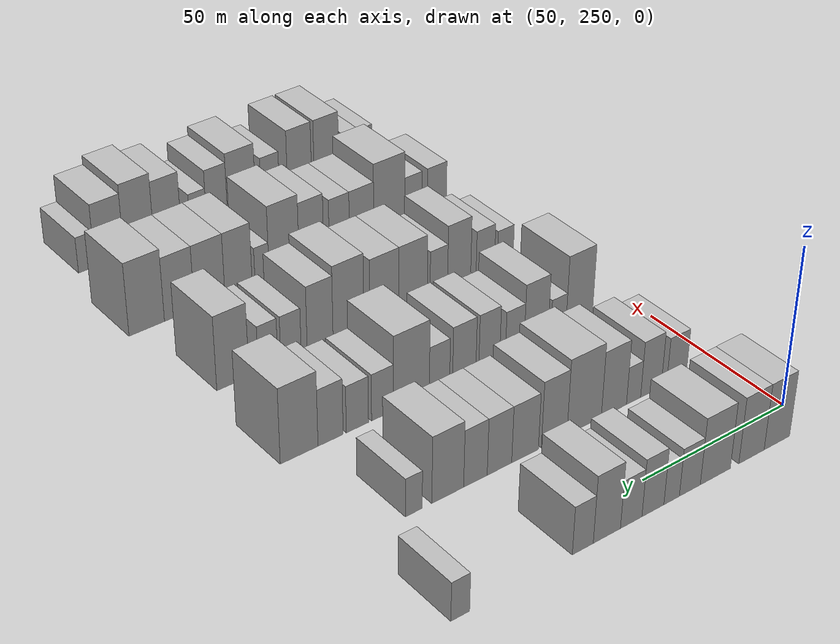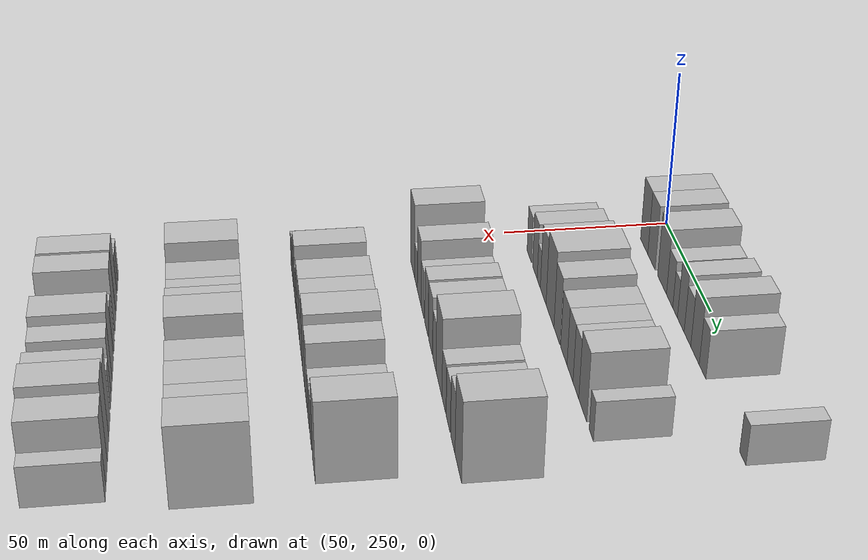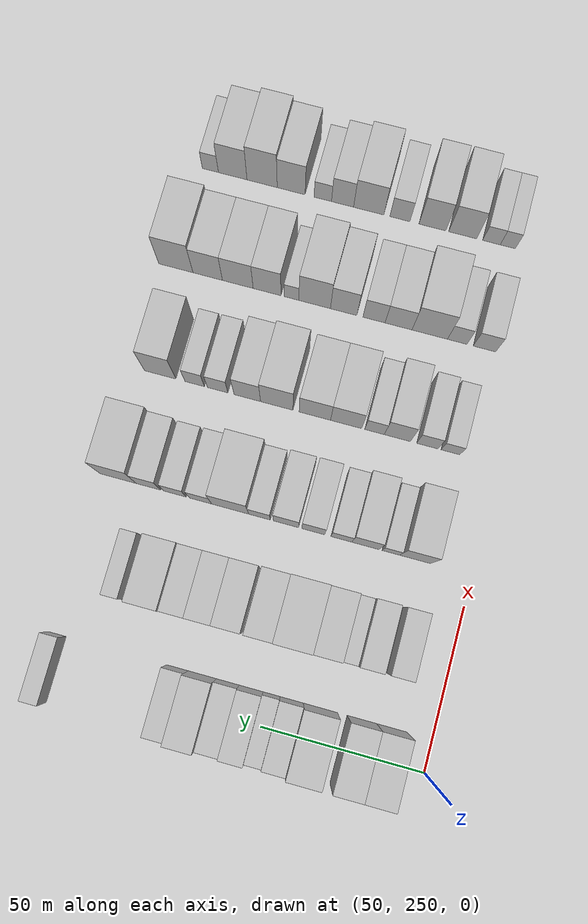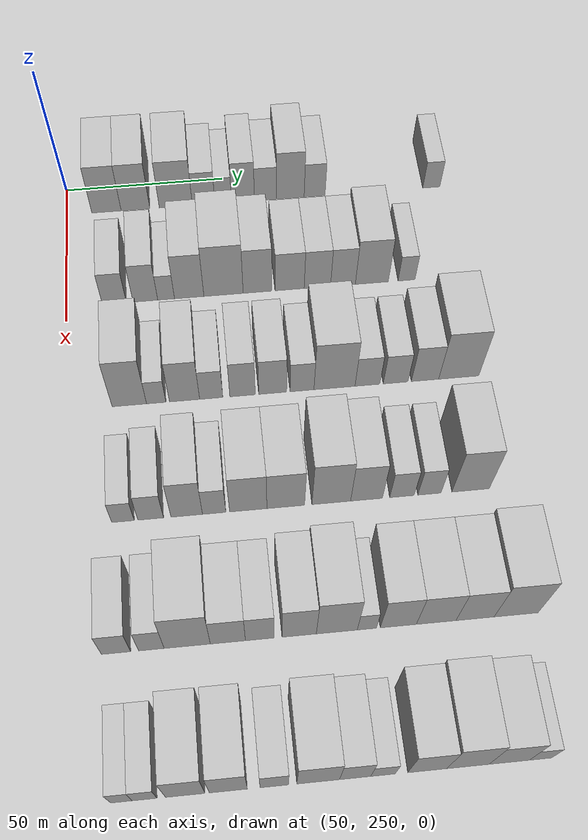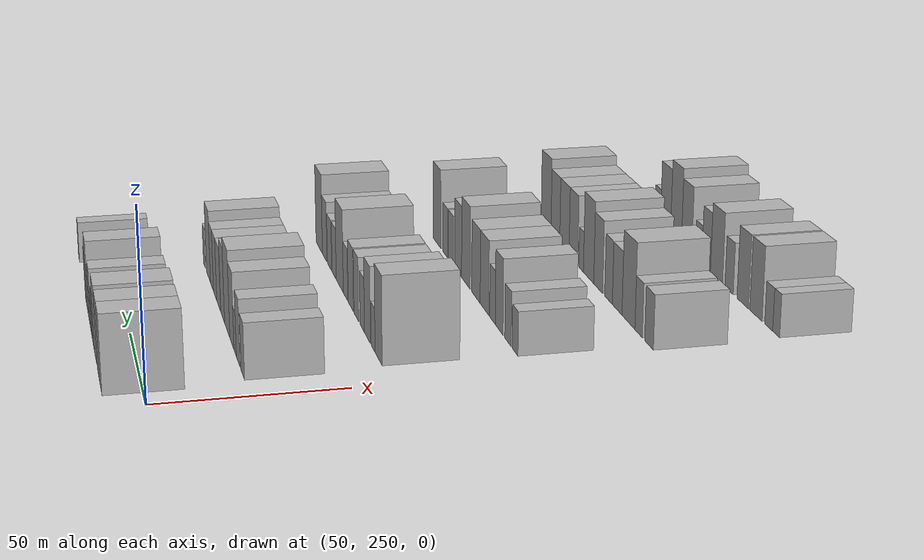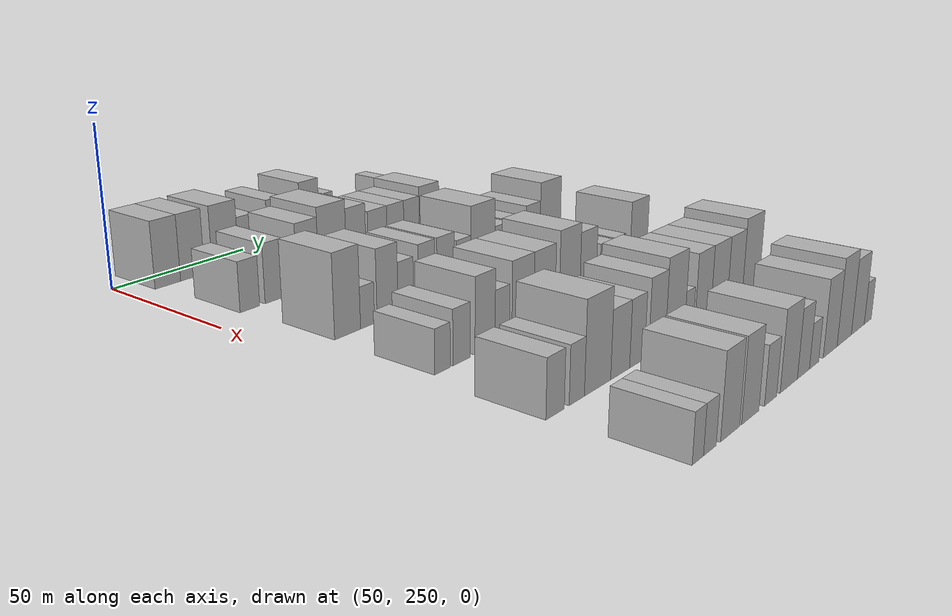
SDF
<sdf version="1.6">
 <world name="default">
  <model name="building_86">
   <static>1</static>
   <pose>50.0000 262.5897 0 0.000000 0.000000 0.000000</pose>
   <link name="link">
    <pose>0 0 10.50 0 0 0</pose>
    <collision name="collision"><geometry><box><size>20.0000 9.2409 21.0000</size></box></geometry></collision>
    <visual name="visual">
     <cast_shadows>0</cast_shadows>
     <geometry><box><size>20.0000 9.2409 21.0000</size></box></geometry>
     <material>
      <script>
       <uri>model://HANNAS_wall/materials/scripts</uri>
       <uri>model://HANNAS_wall/materials/textures</uri>
       <name>vrc/HANNAS_wall</name>
      </script>
     </material>
    </visual>
   </link>
  </model>
  <model name="building_87">
   <static>1</static>
   <pose>50.0000 271.7414 0 0.000000 0.000000 0.000000</pose>
   <link name="link">
    <pose>0 0 10.50 0 0 0</pose>
    <collision name="collision"><geometry><box><size>20.0000 9.0625 21.0000</size></box></geometry></collision>
    <visual name="visual">
     <cast_shadows>0</cast_shadows>
     <geometry><box><size>20.0000 9.0625 21.0000</size></box></geometry>
     <material>
      <script>
       <uri>model://HANNAS_wall/materials/scripts</uri>
       <uri>model://HANNAS_wall/materials/textures</uri>
       <name>vrc/HANNAS_wall</name>
      </script>
     </material>
    </visual>
   </link>
  </model>
  <model name="building_88">
   <static>1</static>
   <pose>50.0000 284.5106 0 0.000000 0.000000 0.000000</pose>
   <link name="link">
    <pose>0 0 10.50 0 0 0</pose>
    <collision name="collision"><geometry><box><size>20.0000 10.4759 21.0000</size></box></geometry></collision>
    <visual name="visual">
     <cast_shadows>0</cast_shadows>
     <geometry><box><size>20.0000 10.4759 21.0000</size></box></geometry>
     <material>
      <script>
       <uri>model://HANNAS_wall/materials/scripts</uri>
       <uri>model://HANNAS_wall/materials/textures</uri>
       <name>vrc/HANNAS_wall</name>
      </script>
     </material>
    </visual>
   </link>
  </model>
  <model name="building_89">
   <static>1</static>
   <pose>50.0000 293.3329 0 0.000000 0.000000 0.000000</pose>
   <link name="link">
    <pose>0 0 7.50 0 0 0</pose>
    <collision name="collision"><geometry><box><size>20.0000 7.1687 15.0000</size></box></geometry></collision>
    <visual name="visual">
     <cast_shadows>0</cast_shadows>
     <geometry><box><size>20.0000 7.1687 15.0000</size></box></geometry>
     <material>
      <script>
       <uri>model://HANNAS_wall/materials/scripts</uri>
       <uri>model://HANNAS_wall/materials/textures</uri>
       <name>vrc/HANNAS_wall</name>
      </script>
     </material>
    </visual>
   </link>
  </model>
  <model name="building_90">
   <static>1</static>
   <pose>50.0000 299.5452 0 0.000000 0.000000 0.000000</pose>
   <link name="link">
    <pose>0 0 6.00 0 0 0</pose>
    <collision name="collision"><geometry><box><size>20.0000 5.2559 12.0000</size></box></geometry></collision>
    <visual name="visual">
     <cast_shadows>0</cast_shadows>
     <geometry><box><size>20.0000 5.2559 12.0000</size></box></geometry>
     <material>
      <script>
       <uri>model://HANNAS_wall/materials/scripts</uri>
       <uri>model://HANNAS_wall/materials/textures</uri>
       <name>vrc/HANNAS_wall</name>
      </script>
     </material>
    </visual>
   </link>
  </model>
  <model name="building_91">
   <static>1</static>
   <pose>50.0000 305.8410 0 0.000000 0.000000 0.000000</pose>
   <link name="link">
    <pose>0 0 9.00 0 0 0</pose>
    <collision name="collision"><geometry><box><size>20.0000 7.3357 18.0000</size></box></geometry></collision>
    <visual name="visual">
     <cast_shadows>0</cast_shadows>
     <geometry><box><size>20.0000 7.3357 18.0000</size></box></geometry>
     <material>
      <script>
       <uri>model://HANNAS_wall/materials/scripts</uri>
       <uri>model://HANNAS_wall/materials/textures</uri>
       <name>vrc/HANNAS_wall</name>
      </script>
     </material>
    </visual>
   </link>
  </model>
  <model name="building_92">
   <static>1</static>
   <pose>50.0000 313.0555 0 0.000000 0.000000 0.000000</pose>
   <link name="link">
    <pose>0 0 7.50 0 0 0</pose>
    <collision name="collision"><geometry><box><size>20.0000 7.0933 15.0000</size></box></geometry></collision>
    <visual name="visual">
     <cast_shadows>0</cast_shadows>
     <geometry><box><size>20.0000 7.0933 15.0000</size></box></geometry>
     <material>
      <script>
       <uri>model://HANNAS_wall/materials/scripts</uri>
       <uri>model://HANNAS_wall/materials/textures</uri>
       <name>vrc/HANNAS_wall</name>
      </script>
     </material>
    </visual>
   </link>
  </model>
  <model name="building_93">
   <static>1</static>
   <pose>50.0000 321.0074 0 0.000000 0.000000 0.000000</pose>
   <link name="link">
    <pose>0 0 10.50 0 0 0</pose>
    <collision name="collision"><geometry><box><size>20.0000 8.8105 21.0000</size></box></geometry></collision>
    <visual name="visual">
     <cast_shadows>0</cast_shadows>
     <geometry><box><size>20.0000 8.8105 21.0000</size></box></geometry>
     <material>
      <script>
       <uri>model://HANNAS_wall/materials/scripts</uri>
       <uri>model://HANNAS_wall/materials/textures</uri>
       <name>vrc/HANNAS_wall</name>
      </script>
     </material>
    </visual>
   </link>
  </model>
  <model name="building_94">
   <static>1</static>
   <pose>50.0000 328.7657 0 0.000000 0.000000 0.000000</pose>
   <link name="link">
    <pose>0 0 7.50 0 0 0</pose>
    <collision name="collision"><geometry><box><size>20.0000 6.7059 15.0000</size></box></geometry></collision>
    <visual name="visual">
     <cast_shadows>0</cast_shadows>
     <geometry><box><size>20.0000 6.7059 15.0000</size></box></geometry>
     <material>
      <script>
       <uri>model://HANNAS_wall/materials/scripts</uri>
       <uri>model://HANNAS_wall/materials/textures</uri>
       <name>vrc/HANNAS_wall</name>
      </script>
     </material>
    </visual>
   </link>
  </model>
  <model name="building_95">
   <static>1</static>
   <pose>50.0000 366.4591 0 0.000000 0.000000 0.000000</pose>
   <link name="link">
    <pose>0 0 6.00 0 0 0</pose>
    <collision name="collision"><geometry><box><size>20.0000 5.5603 12.0000</size></box></geometry></collision>
    <visual name="visual">
     <cast_shadows>0</cast_shadows>
     <geometry><box><size>20.0000 5.5603 12.0000</size></box></geometry>
     <material>
      <script>
       <uri>model://HANNAS_wall/materials/scripts</uri>
       <uri>model://HANNAS_wall/materials/textures</uri>
       <name>vrc/HANNAS_wall</name>
      </script>
     </material>
    </visual>
   </link>
  </model>
  <model name="building_210">
   <static>1</static>
   <pose>85.0000 264.3856 0 0.000000 0.000000 0.000000</pose>
   <link name="link">
    <pose>0 0 7.50 0 0 0</pose>
    <collision name="collision"><geometry><box><size>20.0000 7.1688 15.0000</size></box></geometry></collision>
    <visual name="visual">
     <cast_shadows>0</cast_shadows>
     <geometry><box><size>20.0000 7.1688 15.0000</size></box></geometry>
     <material>
      <script>
       <uri>model://HANNAS_wall/materials/scripts</uri>
       <uri>model://HANNAS_wall/materials/textures</uri>
       <name>vrc/HANNAS_wall</name>
      </script>
     </material>
    </visual>
   </link>
  </model>
  <model name="building_211">
   <static>1</static>
   <pose>85.0000 273.6689 0 0.000000 0.000000 0.000000</pose>
   <link name="link">
    <pose>0 0 9.00 0 0 0</pose>
    <collision name="collision"><geometry><box><size>20.0000 7.3978 18.0000</size></box></geometry></collision>
    <visual name="visual">
     <cast_shadows>0</cast_shadows>
     <geometry><box><size>20.0000 7.3978 18.0000</size></box></geometry>
     <material>
      <script>
       <uri>model://HANNAS_wall/materials/scripts</uri>
       <uri>model://HANNAS_wall/materials/textures</uri>
       <name>vrc/HANNAS_wall</name>
      </script>
     </material>
    </visual>
   </link>
  </model>
  <model name="building_212">
   <static>1</static>
   <pose>85.0000 279.8875 0 0.000000 0.000000 0.000000</pose>
   <link name="link">
    <pose>0 0 6.00 0 0 0</pose>
    <collision name="collision"><geometry><box><size>20.0000 5.0394 12.0000</size></box></geometry></collision>
    <visual name="visual">
     <cast_shadows>0</cast_shadows>
     <geometry><box><size>20.0000 5.0394 12.0000</size></box></geometry>
     <material>
      <script>
       <uri>model://HANNAS_wall/materials/scripts</uri>
       <uri>model://HANNAS_wall/materials/textures</uri>
       <name>vrc/HANNAS_wall</name>
      </script>
     </material>
    </visual>
   </link>
  </model>
  <model name="building_213">
   <static>1</static>
   <pose>85.0000 286.8312 0 0.000000 0.000000 0.000000</pose>
   <link name="link">
    <pose>0 0 10.50 0 0 0</pose>
    <collision name="collision"><geometry><box><size>20.0000 8.8480 21.0000</size></box></geometry></collision>
    <visual name="visual">
     <cast_shadows>0</cast_shadows>
     <geometry><box><size>20.0000 8.8480 21.0000</size></box></geometry>
     <material>
      <script>
       <uri>model://HANNAS_wall/materials/scripts</uri>
       <uri>model://HANNAS_wall/materials/textures</uri>
       <name>vrc/HANNAS_wall</name>
      </script>
     </material>
    </visual>
   </link>
  </model>
  <model name="building_214">
   <static>1</static>
   <pose>85.0000 297.1710 0 0.000000 0.000000 0.000000</pose>
   <link name="link">
    <pose>0 0 12.00 0 0 0</pose>
    <collision name="collision"><geometry><box><size>20.0000 11.8317 24.0000</size></box></geometry></collision>
    <visual name="visual">
     <cast_shadows>0</cast_shadows>
     <geometry><box><size>20.0000 11.8317 24.0000</size></box></geometry>
     <material>
      <script>
       <uri>model://HANNAS_wall/materials/scripts</uri>
       <uri>model://HANNAS_wall/materials/textures</uri>
       <name>vrc/HANNAS_wall</name>
      </script>
     </material>
    </visual>
   </link>
  </model>
  <model name="building_215">
   <static>1</static>
   <pose>85.0000 307.4220 0 0.000000 0.000000 0.000000</pose>
   <link name="link">
    <pose>0 0 10.50 0 0 0</pose>
    <collision name="collision"><geometry><box><size>20.0000 8.6702 21.0000</size></box></geometry></collision>
    <visual name="visual">
     <cast_shadows>0</cast_shadows>
     <geometry><box><size>20.0000 8.6702 21.0000</size></box></geometry>
     <material>
      <script>
       <uri>model://HANNAS_wall/materials/scripts</uri>
       <uri>model://HANNAS_wall/materials/textures</uri>
       <name>vrc/HANNAS_wall</name>
      </script>
     </material>
    </visual>
   </link>
  </model>
  <model name="building_216">
   <static>1</static>
   <pose>85.0000 317.1791 0 0.000000 0.000000 0.000000</pose>
   <link name="link">
    <pose>0 0 9.00 0 0 0</pose>
    <collision name="collision"><geometry><box><size>20.0000 8.8438 18.0000</size></box></geometry></collision>
    <visual name="visual">
     <cast_shadows>0</cast_shadows>
     <geometry><box><size>20.0000 8.8438 18.0000</size></box></geometry>
     <material>
      <script>
       <uri>model://HANNAS_wall/materials/scripts</uri>
       <uri>model://HANNAS_wall/materials/textures</uri>
       <name>vrc/HANNAS_wall</name>
      </script>
     </material>
    </visual>
   </link>
  </model>
  <model name="building_217">
   <static>1</static>
   <pose>85.0000 325.6056 0 0.000000 0.000000 0.000000</pose>
   <link name="link">
    <pose>0 0 9.00 0 0 0</pose>
    <collision name="collision"><geometry><box><size>20.0000 8.0092 18.0000</size></box></geometry></collision>
    <visual name="visual">
     <cast_shadows>0</cast_shadows>
     <geometry><box><size>20.0000 8.0092 18.0000</size></box></geometry>
     <material>
      <script>
       <uri>model://HANNAS_wall/materials/scripts</uri>
       <uri>model://HANNAS_wall/materials/textures</uri>
       <name>vrc/HANNAS_wall</name>
      </script>
     </material>
    </visual>
   </link>
  </model>
  <model name="building_218">
   <static>1</static>
   <pose>85.0000 333.3983 0 0.000000 0.000000 0.000000</pose>
   <link name="link">
    <pose>0 0 9.00 0 0 0</pose>
    <collision name="collision"><geometry><box><size>20.0000 7.5762 18.0000</size></box></geometry></collision>
    <visual name="visual">
     <cast_shadows>0</cast_shadows>
     <geometry><box><size>20.0000 7.5762 18.0000</size></box></geometry>
     <material>
      <script>
       <uri>model://HANNAS_wall/materials/scripts</uri>
       <uri>model://HANNAS_wall/materials/textures</uri>
       <name>vrc/HANNAS_wall</name>
      </script>
     </material>
    </visual>
   </link>
  </model>
  <model name="building_219">
   <static>1</static>
   <pose>85.0000 342.2260 0 0.000000 0.000000 0.000000</pose>
   <link name="link">
    <pose>0 0 10.50 0 0 0</pose>
    <collision name="collision"><geometry><box><size>20.0000 10.0791 21.0000</size></box></geometry></collision>
    <visual name="visual">
     <cast_shadows>0</cast_shadows>
     <geometry><box><size>20.0000 10.0791 21.0000</size></box></geometry>
     <material>
      <script>
       <uri>model://HANNAS_wall/materials/scripts</uri>
       <uri>model://HANNAS_wall/materials/textures</uri>
       <name>vrc/HANNAS_wall</name>
      </script>
     </material>
    </visual>
   </link>
  </model>
  <model name="building_220">
   <static>1</static>
   <pose>85.0000 352.8619 0 0.000000 0.000000 0.000000</pose>
   <link name="link">
    <pose>0 0 6.00 0 0 0</pose>
    <collision name="collision"><geometry><box><size>20.0000 5.1927 12.0000</size></box></geometry></collision>
    <visual name="visual">
     <cast_shadows>0</cast_shadows>
     <geometry><box><size>20.0000 5.1927 12.0000</size></box></geometry>
     <material>
      <script>
       <uri>model://HANNAS_wall/materials/scripts</uri>
       <uri>model://HANNAS_wall/materials/textures</uri>
       <name>vrc/HANNAS_wall</name>
      </script>
     </material>
    </visual>
   </link>
  </model>
  <model name="building_331">
   <static>1</static>
   <pose>120.0000 267.9369 0 0.000000 0.000000 0.000000</pose>
   <link name="link">
    <pose>0 0 12.00 0 0 0</pose>
    <collision name="collision"><geometry><box><size>20.0000 9.7380 24.0000</size></box></geometry></collision>
    <visual name="visual">
     <cast_shadows>0</cast_shadows>
     <geometry><box><size>20.0000 9.7380 24.0000</size></box></geometry>
     <material>
      <script>
       <uri>model://HANNAS_wall/materials/scripts</uri>
       <uri>model://HANNAS_wall/materials/textures</uri>
       <name>vrc/HANNAS_wall</name>
      </script>
     </material>
    </visual>
   </link>
  </model>
  <model name="building_332">
   <static>1</static>
   <pose>120.0000 275.5566 0 0.000000 0.000000 0.000000</pose>
   <link name="link">
    <pose>0 0 6.00 0 0 0</pose>
    <collision name="collision"><geometry><box><size>20.0000 5.5013 12.0000</size></box></geometry></collision>
    <visual name="visual">
     <cast_shadows>0</cast_shadows>
     <geometry><box><size>20.0000 5.5013 12.0000</size></box></geometry>
     <material>
      <script>
       <uri>model://HANNAS_wall/materials/scripts</uri>
       <uri>model://HANNAS_wall/materials/textures</uri>
       <name>vrc/HANNAS_wall</name>
      </script>
     </material>
    </visual>
   </link>
  </model>
  <model name="building_333">
   <static>1</static>
   <pose>120.0000 283.5938 0 0.000000 0.000000 0.000000</pose>
   <link name="link">
    <pose>0 0 10.50 0 0 0</pose>
    <collision name="collision"><geometry><box><size>20.0000 8.5732 21.0000</size></box></geometry></collision>
    <visual name="visual">
     <cast_shadows>0</cast_shadows>
     <geometry><box><size>20.0000 8.5732 21.0000</size></box></geometry>
     <material>
      <script>
       <uri>model://HANNAS_wall/materials/scripts</uri>
       <uri>model://HANNAS_wall/materials/textures</uri>
       <name>vrc/HANNAS_wall</name>
      </script>
     </material>
    </visual>
   </link>
  </model>
  <model name="building_334">
   <static>1</static>
   <pose>120.0000 291.1800 0 0.000000 0.000000 0.000000</pose>
   <link name="link">
    <pose>0 0 7.50 0 0 0</pose>
    <collision name="collision"><geometry><box><size>20.0000 6.5993 15.0000</size></box></geometry></collision>
    <visual name="visual">
     <cast_shadows>0</cast_shadows>
     <geometry><box><size>20.0000 6.5993 15.0000</size></box></geometry>
     <material>
      <script>
       <uri>model://HANNAS_wall/materials/scripts</uri>
       <uri>model://HANNAS_wall/materials/textures</uri>
       <name>vrc/HANNAS_wall</name>
      </script>
     </material>
    </visual>
   </link>
  </model>
  <model name="building_335">
   <static>1</static>
   <pose>120.0000 300.1126 0 0.000000 0.000000 0.000000</pose>
   <link name="link">
    <pose>0 0 9.00 0 0 0</pose>
    <collision name="collision"><geometry><box><size>20.0000 7.2658 18.0000</size></box></geometry></collision>
    <visual name="visual">
     <cast_shadows>0</cast_shadows>
     <geometry><box><size>20.0000 7.2658 18.0000</size></box></geometry>
     <material>
      <script>
       <uri>model://HANNAS_wall/materials/scripts</uri>
       <uri>model://HANNAS_wall/materials/textures</uri>
       <name>vrc/HANNAS_wall</name>
      </script>
     </material>
    </visual>
   </link>
  </model>
  <model name="building_336">
   <static>1</static>
   <pose>120.0000 308.7282 0 0.000000 0.000000 0.000000</pose>
   <link name="link">
    <pose>0 0 9.00 0 0 0</pose>
    <collision name="collision"><geometry><box><size>20.0000 7.9654 18.0000</size></box></geometry></collision>
    <visual name="visual">
     <cast_shadows>0</cast_shadows>
     <geometry><box><size>20.0000 7.9654 18.0000</size></box></geometry>
     <material>
      <script>
       <uri>model://HANNAS_wall/materials/scripts</uri>
       <uri>model://HANNAS_wall/materials/textures</uri>
       <name>vrc/HANNAS_wall</name>
      </script>
     </material>
    </visual>
   </link>
  </model>
  <model name="building_337">
   <static>1</static>
   <pose>120.0000 317.1400 0 0.000000 0.000000 0.000000</pose>
   <link name="link">
    <pose>0 0 7.50 0 0 0</pose>
    <collision name="collision"><geometry><box><size>20.0000 6.8581 15.0000</size></box></geometry></collision>
    <visual name="visual">
     <cast_shadows>0</cast_shadows>
     <geometry><box><size>20.0000 6.8581 15.0000</size></box></geometry>
     <material>
      <script>
       <uri>model://HANNAS_wall/materials/scripts</uri>
       <uri>model://HANNAS_wall/materials/textures</uri>
       <name>vrc/HANNAS_wall</name>
      </script>
     </material>
    </visual>
   </link>
  </model>
  <model name="building_338">
   <static>1</static>
   <pose>120.0000 326.4887 0 0.000000 0.000000 0.000000</pose>
   <link name="link">
    <pose>0 0 12.00 0 0 0</pose>
    <collision name="collision"><geometry><box><size>20.0000 11.8393 24.0000</size></box></geometry></collision>
    <visual name="visual">
     <cast_shadows>0</cast_shadows>
     <geometry><box><size>20.0000 11.8393 24.0000</size></box></geometry>
     <material>
      <script>
       <uri>model://HANNAS_wall/materials/scripts</uri>
       <uri>model://HANNAS_wall/materials/textures</uri>
       <name>vrc/HANNAS_wall</name>
      </script>
     </material>
    </visual>
   </link>
  </model>
  <model name="building_339">
   <static>1</static>
   <pose>120.0000 335.9864 0 0.000000 0.000000 0.000000</pose>
   <link name="link">
    <pose>0 0 7.50 0 0 0</pose>
    <collision name="collision"><geometry><box><size>20.0000 7.1561 15.0000</size></box></geometry></collision>
    <visual name="visual">
     <cast_shadows>0</cast_shadows>
     <geometry><box><size>20.0000 7.1561 15.0000</size></box></geometry>
     <material>
      <script>
       <uri>model://HANNAS_wall/materials/scripts</uri>
       <uri>model://HANNAS_wall/materials/textures</uri>
       <name>vrc/HANNAS_wall</name>
      </script>
     </material>
    </visual>
   </link>
  </model>
  <model name="building_340">
   <static>1</static>
   <pose>120.0000 344.1372 0 0.000000 0.000000 0.000000</pose>
   <link name="link">
    <pose>0 0 7.50 0 0 0</pose>
    <collision name="collision"><geometry><box><size>20.0000 7.1454 15.0000</size></box></geometry></collision>
    <visual name="visual">
     <cast_shadows>0</cast_shadows>
     <geometry><box><size>20.0000 7.1454 15.0000</size></box></geometry>
     <material>
      <script>
       <uri>model://HANNAS_wall/materials/scripts</uri>
       <uri>model://HANNAS_wall/materials/textures</uri>
       <name>vrc/HANNAS_wall</name>
      </script>
     </material>
    </visual>
   </link>
  </model>
  <model name="building_341">
   <static>1</static>
   <pose>120.0000 352.6727 0 0.000000 0.000000 0.000000</pose>
   <link name="link">
    <pose>0 0 9.00 0 0 0</pose>
    <collision name="collision"><geometry><box><size>20.0000 7.9255 18.0000</size></box></geometry></collision>
    <visual name="visual">
     <cast_shadows>0</cast_shadows>
     <geometry><box><size>20.0000 7.9255 18.0000</size></box></geometry>
     <material>
      <script>
       <uri>model://HANNAS_wall/materials/scripts</uri>
       <uri>model://HANNAS_wall/materials/textures</uri>
       <name>vrc/HANNAS_wall</name>
      </script>
     </material>
    </visual>
   </link>
  </model>
  <model name="building_342">
   <static>1</static>
   <pose>120.0000 362.4865 0 0.000000 0.000000 0.000000</pose>
   <link name="link">
    <pose>0 0 12.00 0 0 0</pose>
    <collision name="collision"><geometry><box><size>20.0000 11.7022 24.0000</size></box></geometry></collision>
    <visual name="visual">
     <cast_shadows>0</cast_shadows>
     <geometry><box><size>20.0000 11.7022 24.0000</size></box></geometry>
     <material>
      <script>
       <uri>model://HANNAS_wall/materials/scripts</uri>
       <uri>model://HANNAS_wall/materials/textures</uri>
       <name>vrc/HANNAS_wall</name>
      </script>
     </material>
    </visual>
   </link>
  </model>
  <model name="building_454">
   <static>1</static>
   <pose>155.0000 265.3099 0 0.000000 0.000000 0.000000</pose>
   <link name="link">
    <pose>0 0 6.00 0 0 0</pose>
    <collision name="collision"><geometry><box><size>20.0000 5.9802 12.0000</size></box></geometry></collision>
    <visual name="visual">
     <cast_shadows>0</cast_shadows>
     <geometry><box><size>20.0000 5.9802 12.0000</size></box></geometry>
     <material>
      <script>
       <uri>model://HANNAS_wall/materials/scripts</uri>
       <uri>model://HANNAS_wall/materials/textures</uri>
       <name>vrc/HANNAS_wall</name>
      </script>
     </material>
    </visual>
   </link>
  </model>
  <model name="building_455">
   <static>1</static>
   <pose>155.0000 272.7102 0 0.000000 0.000000 0.000000</pose>
   <link name="link">
    <pose>0 0 7.50 0 0 0</pose>
    <collision name="collision"><geometry><box><size>20.0000 6.8204 15.0000</size></box></geometry></collision>
    <visual name="visual">
     <cast_shadows>0</cast_shadows>
     <geometry><box><size>20.0000 6.8204 15.0000</size></box></geometry>
     <material>
      <script>
       <uri>model://HANNAS_wall/materials/scripts</uri>
       <uri>model://HANNAS_wall/materials/textures</uri>
       <name>vrc/HANNAS_wall</name>
      </script>
     </material>
    </visual>
   </link>
  </model>
  <model name="building_456">
   <static>1</static>
   <pose>155.0000 282.3299 0 0.000000 0.000000 0.000000</pose>
   <link name="link">
    <pose>0 0 10.50 0 0 0</pose>
    <collision name="collision"><geometry><box><size>20.0000 8.4191 21.0000</size></box></geometry></collision>
    <visual name="visual">
     <cast_shadows>0</cast_shadows>
     <geometry><box><size>20.0000 8.4191 21.0000</size></box></geometry>
     <material>
      <script>
       <uri>model://HANNAS_wall/materials/scripts</uri>
       <uri>model://HANNAS_wall/materials/textures</uri>
       <name>vrc/HANNAS_wall</name>
      </script>
     </material>
    </visual>
   </link>
  </model>
  <model name="building_457">
   <static>1</static>
   <pose>155.0000 289.6793 0 0.000000 0.000000 0.000000</pose>
   <link name="link">
    <pose>0 0 7.50 0 0 0</pose>
    <collision name="collision"><geometry><box><size>20.0000 6.2796 15.0000</size></box></geometry></collision>
    <visual name="visual">
     <cast_shadows>0</cast_shadows>
     <geometry><box><size>20.0000 6.2796 15.0000</size></box></geometry>
     <material>
      <script>
       <uri>model://HANNAS_wall/materials/scripts</uri>
       <uri>model://HANNAS_wall/materials/textures</uri>
       <name>vrc/HANNAS_wall</name>
      </script>
     </material>
    </visual>
   </link>
  </model>
  <model name="building_458">
   <static>1</static>
   <pose>155.0000 298.8348 0 0.000000 0.000000 0.000000</pose>
   <link name="link">
    <pose>0 0 10.50 0 0 0</pose>
    <collision name="collision"><geometry><box><size>20.0000 10.0314 21.0000</size></box></geometry></collision>
    <visual name="visual">
     <cast_shadows>0</cast_shadows>
     <geometry><box><size>20.0000 10.0314 21.0000</size></box></geometry>
     <material>
      <script>
       <uri>model://HANNAS_wall/materials/scripts</uri>
       <uri>model://HANNAS_wall/materials/textures</uri>
       <name>vrc/HANNAS_wall</name>
      </script>
     </material>
    </visual>
   </link>
  </model>
  <model name="building_459">
   <static>1</static>
   <pose>155.0000 308.9380 0 0.000000 0.000000 0.000000</pose>
   <link name="link">
    <pose>0 0 10.50 0 0 0</pose>
    <collision name="collision"><geometry><box><size>20.0000 10.1752 21.0000</size></box></geometry></collision>
    <visual name="visual">
     <cast_shadows>0</cast_shadows>
     <geometry><box><size>20.0000 10.1752 21.0000</size></box></geometry>
     <material>
      <script>
       <uri>model://HANNAS_wall/materials/scripts</uri>
       <uri>model://HANNAS_wall/materials/textures</uri>
       <name>vrc/HANNAS_wall</name>
      </script>
     </material>
    </visual>
   </link>
  </model>
  <model name="building_460">
   <static>1</static>
   <pose>155.0000 321.2710 0 0.000000 0.000000 0.000000</pose>
   <link name="link">
    <pose>0 0 12.00 0 0 0</pose>
    <collision name="collision"><geometry><box><size>20.0000 10.4907 24.0000</size></box></geometry></collision>
    <visual name="visual">
     <cast_shadows>0</cast_shadows>
     <geometry><box><size>20.0000 10.4907 24.0000</size></box></geometry>
     <material>
      <script>
       <uri>model://HANNAS_wall/materials/scripts</uri>
       <uri>model://HANNAS_wall/materials/textures</uri>
       <name>vrc/HANNAS_wall</name>
      </script>
     </material>
    </visual>
   </link>
  </model>
  <model name="building_461">
   <static>1</static>
   <pose>155.0000 330.8384 0 0.000000 0.000000 0.000000</pose>
   <link name="link">
    <pose>0 0 10.50 0 0 0</pose>
    <collision name="collision"><geometry><box><size>20.0000 8.6441 21.0000</size></box></geometry></collision>
    <visual name="visual">
     <cast_shadows>0</cast_shadows>
     <geometry><box><size>20.0000 8.6441 21.0000</size></box></geometry>
     <material>
      <script>
       <uri>model://HANNAS_wall/materials/scripts</uri>
       <uri>model://HANNAS_wall/materials/textures</uri>
       <name>vrc/HANNAS_wall</name>
      </script>
     </material>
    </visual>
   </link>
  </model>
  <model name="building_462">
   <static>1</static>
   <pose>155.0000 340.5013 0 0.000000 0.000000 0.000000</pose>
   <link name="link">
    <pose>0 0 7.50 0 0 0</pose>
    <collision name="collision"><geometry><box><size>20.0000 6.6818 15.0000</size></box></geometry></collision>
    <visual name="visual">
     <cast_shadows>0</cast_shadows>
     <geometry><box><size>20.0000 6.6818 15.0000</size></box></geometry>
     <material>
      <script>
       <uri>model://HANNAS_wall/materials/scripts</uri>
       <uri>model://HANNAS_wall/materials/textures</uri>
       <name>vrc/HANNAS_wall</name>
      </script>
     </material>
    </visual>
   </link>
  </model>
  <model name="building_463">
   <static>1</static>
   <pose>155.0000 348.0108 0 0.000000 0.000000 0.000000</pose>
   <link name="link">
    <pose>0 0 7.50 0 0 0</pose>
    <collision name="collision"><geometry><box><size>20.0000 6.3370 15.0000</size></box></geometry></collision>
    <visual name="visual">
     <cast_shadows>0</cast_shadows>
     <geometry><box><size>20.0000 6.3370 15.0000</size></box></geometry>
     <material>
      <script>
       <uri>model://HANNAS_wall/materials/scripts</uri>
       <uri>model://HANNAS_wall/materials/textures</uri>
       <name>vrc/HANNAS_wall</name>
      </script>
     </material>
    </visual>
   </link>
  </model>
  <model name="building_464">
   <static>1</static>
   <pose>155.0000 359.3113 0 0.000000 0.000000 0.000000</pose>
   <link name="link">
    <pose>0 0 12.00 0 0 0</pose>
    <collision name="collision"><geometry><box><size>20.0000 10.2641 24.0000</size></box></geometry></collision>
    <visual name="visual">
     <cast_shadows>0</cast_shadows>
     <geometry><box><size>20.0000 10.2641 24.0000</size></box></geometry>
     <material>
      <script>
       <uri>model://HANNAS_wall/materials/scripts</uri>
       <uri>model://HANNAS_wall/materials/textures</uri>
       <name>vrc/HANNAS_wall</name>
      </script>
     </material>
    </visual>
   </link>
  </model>
  <model name="building_582">
   <static>1</static>
   <pose>190.0000 262.7425 0 0.000000 0.000000 0.000000</pose>
   <link name="link">
    <pose>0 0 7.50 0 0 0</pose>
    <collision name="collision"><geometry><box><size>20.0000 7.3038 15.0000</size></box></geometry></collision>
    <visual name="visual">
     <cast_shadows>0</cast_shadows>
     <geometry><box><size>20.0000 7.3038 15.0000</size></box></geometry>
     <material>
      <script>
       <uri>model://HANNAS_wall/materials/scripts</uri>
       <uri>model://HANNAS_wall/materials/textures</uri>
       <name>vrc/HANNAS_wall</name>
      </script>
     </material>
    </visual>
   </link>
  </model>
  <model name="building_583">
   <static>1</static>
   <pose>190.0000 271.5884 0 0.000000 0.000000 0.000000</pose>
   <link name="link">
    <pose>0 0 7.50 0 0 0</pose>
    <collision name="collision"><geometry><box><size>20.0000 6.3878 15.0000</size></box></geometry></collision>
    <visual name="visual">
     <cast_shadows>0</cast_shadows>
     <geometry><box><size>20.0000 6.3878 15.0000</size></box></geometry>
     <material>
      <script>
       <uri>model://HANNAS_wall/materials/scripts</uri>
       <uri>model://HANNAS_wall/materials/textures</uri>
       <name>vrc/HANNAS_wall</name>
      </script>
     </material>
    </visual>
   </link>
  </model>
  <model name="building_584">
   <static>1</static>
   <pose>190.0000 280.5796 0 0.000000 0.000000 0.000000</pose>
   <link name="link">
    <pose>0 0 12.00 0 0 0</pose>
    <collision name="collision"><geometry><box><size>20.0000 11.5947 24.0000</size></box></geometry></collision>
    <visual name="visual">
     <cast_shadows>0</cast_shadows>
     <geometry><box><size>20.0000 11.5947 24.0000</size></box></geometry>
     <material>
      <script>
       <uri>model://HANNAS_wall/materials/scripts</uri>
       <uri>model://HANNAS_wall/materials/textures</uri>
       <name>vrc/HANNAS_wall</name>
      </script>
     </material>
    </visual>
   </link>
  </model>
  <model name="building_585">
   <static>1</static>
   <pose>190.0000 290.7981 0 0.000000 0.000000 0.000000</pose>
   <link name="link">
    <pose>0 0 9.00 0 0 0</pose>
    <collision name="collision"><geometry><box><size>20.0000 8.8424 18.0000</size></box></geometry></collision>
    <visual name="visual">
     <cast_shadows>0</cast_shadows>
     <geometry><box><size>20.0000 8.8424 18.0000</size></box></geometry>
     <material>
      <script>
       <uri>model://HANNAS_wall/materials/scripts</uri>
       <uri>model://HANNAS_wall/materials/textures</uri>
       <name>vrc/HANNAS_wall</name>
      </script>
     </material>
    </visual>
   </link>
  </model>
  <model name="building_586">
   <static>1</static>
   <pose>190.0000 298.8443 0 0.000000 0.000000 0.000000</pose>
   <link name="link">
    <pose>0 0 9.00 0 0 0</pose>
    <collision name="collision"><geometry><box><size>20.0000 7.2499 18.0000</size></box></geometry></collision>
    <visual name="visual">
     <cast_shadows>0</cast_shadows>
     <geometry><box><size>20.0000 7.2499 18.0000</size></box></geometry>
     <material>
      <script>
       <uri>model://HANNAS_wall/materials/scripts</uri>
       <uri>model://HANNAS_wall/materials/textures</uri>
       <name>vrc/HANNAS_wall</name>
      </script>
     </material>
    </visual>
   </link>
  </model>
  <model name="building_587">
   <static>1</static>
   <pose>190.0000 308.8154 0 0.000000 0.000000 0.000000</pose>
   <link name="link">
    <pose>0 0 10.50 0 0 0</pose>
    <collision name="collision"><geometry><box><size>20.0000 8.6923 21.0000</size></box></geometry></collision>
    <visual name="visual">
     <cast_shadows>0</cast_shadows>
     <geometry><box><size>20.0000 8.6923 21.0000</size></box></geometry>
     <material>
      <script>
       <uri>model://HANNAS_wall/materials/scripts</uri>
       <uri>model://HANNAS_wall/materials/textures</uri>
       <name>vrc/HANNAS_wall</name>
      </script>
     </material>
    </visual>
   </link>
  </model>
  <model name="building_588">
   <static>1</static>
   <pose>190.0000 318.3810 0 0.000000 0.000000 0.000000</pose>
   <link name="link">
    <pose>0 0 12.00 0 0 0</pose>
    <collision name="collision"><geometry><box><size>20.0000 10.4390 24.0000</size></box></geometry></collision>
    <visual name="visual">
     <cast_shadows>0</cast_shadows>
     <geometry><box><size>20.0000 10.4390 24.0000</size></box></geometry>
     <material>
      <script>
       <uri>model://HANNAS_wall/materials/scripts</uri>
       <uri>model://HANNAS_wall/materials/textures</uri>
       <name>vrc/HANNAS_wall</name>
      </script>
     </material>
    </visual>
   </link>
  </model>
  <model name="building_589">
   <static>1</static>
   <pose>190.0000 326.0357 0 0.000000 0.000000 0.000000</pose>
   <link name="link">
    <pose>0 0 6.00 0 0 0</pose>
    <collision name="collision"><geometry><box><size>20.0000 4.8705 12.0000</size></box></geometry></collision>
    <visual name="visual">
     <cast_shadows>0</cast_shadows>
     <geometry><box><size>20.0000 4.8705 12.0000</size></box></geometry>
     <material>
      <script>
       <uri>model://HANNAS_wall/materials/scripts</uri>
       <uri>model://HANNAS_wall/materials/textures</uri>
       <name>vrc/HANNAS_wall</name>
      </script>
     </material>
    </visual>
   </link>
  </model>
  <model name="building_590">
   <static>1</static>
   <pose>190.0000 334.0959 0 0.000000 0.000000 0.000000</pose>
   <link name="link">
    <pose>0 0 10.50 0 0 0</pose>
    <collision name="collision"><geometry><box><size>20.0000 9.2498 21.0000</size></box></geometry></collision>
    <visual name="visual">
     <cast_shadows>0</cast_shadows>
     <geometry><box><size>20.0000 9.2498 21.0000</size></box></geometry>
     <material>
      <script>
       <uri>model://HANNAS_wall/materials/scripts</uri>
       <uri>model://HANNAS_wall/materials/textures</uri>
       <name>vrc/HANNAS_wall</name>
      </script>
     </material>
    </visual>
   </link>
  </model>
  <model name="building_591">
   <static>1</static>
   <pose>190.0000 343.8162 0 0.000000 0.000000 0.000000</pose>
   <link name="link">
    <pose>0 0 10.50 0 0 0</pose>
    <collision name="collision"><geometry><box><size>20.0000 10.1909 21.0000</size></box></geometry></collision>
    <visual name="visual">
     <cast_shadows>0</cast_shadows>
     <geometry><box><size>20.0000 10.1909 21.0000</size></box></geometry>
     <material>
      <script>
       <uri>model://HANNAS_wall/materials/scripts</uri>
       <uri>model://HANNAS_wall/materials/textures</uri>
       <name>vrc/HANNAS_wall</name>
      </script>
     </material>
    </visual>
   </link>
  </model>
  <model name="building_592">
   <static>1</static>
   <pose>190.0000 353.8245 0 0.000000 0.000000 0.000000</pose>
   <link name="link">
    <pose>0 0 10.50 0 0 0</pose>
    <collision name="collision"><geometry><box><size>20.0000 9.8256 21.0000</size></box></geometry></collision>
    <visual name="visual">
     <cast_shadows>0</cast_shadows>
     <geometry><box><size>20.0000 9.8256 21.0000</size></box></geometry>
     <material>
      <script>
       <uri>model://HANNAS_wall/materials/scripts</uri>
       <uri>model://HANNAS_wall/materials/textures</uri>
       <name>vrc/HANNAS_wall</name>
      </script>
     </material>
    </visual>
   </link>
  </model>
  <model name="building_593">
   <static>1</static>
   <pose>190.0000 364.4486 0 0.000000 0.000000 0.000000</pose>
   <link name="link">
    <pose>0 0 12.00 0 0 0</pose>
    <collision name="collision"><geometry><box><size>20.0000 11.4225 24.0000</size></box></geometry></collision>
    <visual name="visual">
     <cast_shadows>0</cast_shadows>
     <geometry><box><size>20.0000 11.4225 24.0000</size></box></geometry>
     <material>
      <script>
       <uri>model://HANNAS_wall/materials/scripts</uri>
       <uri>model://HANNAS_wall/materials/textures</uri>
       <name>vrc/HANNAS_wall</name>
      </script>
     </material>
    </visual>
   </link>
  </model>
  <model name="building_713">
   <static>1</static>
   <pose>225.0000 263.3113 0 0.000000 0.000000 0.000000</pose>
   <link name="link">
    <pose>0 0 6.00 0 0 0</pose>
    <collision name="collision"><geometry><box><size>20.0000 5.0143 12.0000</size></box></geometry></collision>
    <visual name="visual">
     <cast_shadows>0</cast_shadows>
     <geometry><box><size>20.0000 5.0143 12.0000</size></box></geometry>
     <material>
      <script>
       <uri>model://HANNAS_wall/materials/scripts</uri>
       <uri>model://HANNAS_wall/materials/textures</uri>
       <name>vrc/HANNAS_wall</name>
      </script>
     </material>
    </visual>
   </link>
  </model>
  <model name="building_714">
   <static>1</static>
   <pose>225.0000 268.7152 0 0.000000 0.000000 0.000000</pose>
   <link name="link">
    <pose>0 0 6.00 0 0 0</pose>
    <collision name="collision"><geometry><box><size>20.0000 5.7935 12.0000</size></box></geometry></collision>
    <visual name="visual">
     <cast_shadows>0</cast_shadows>
     <geometry><box><size>20.0000 5.7935 12.0000</size></box></geometry>
     <material>
      <script>
       <uri>model://HANNAS_wall/materials/scripts</uri>
       <uri>model://HANNAS_wall/materials/textures</uri>
       <name>vrc/HANNAS_wall</name>
      </script>
     </material>
    </visual>
   </link>
  </model>
  <model name="building_715">
   <static>1</static>
   <pose>225.0000 278.2406 0 0.000000 0.000000 0.000000</pose>
   <link name="link">
    <pose>0 0 10.50 0 0 0</pose>
    <collision name="collision"><geometry><box><size>20.0000 9.2573 21.0000</size></box></geometry></collision>
    <visual name="visual">
     <cast_shadows>0</cast_shadows>
     <geometry><box><size>20.0000 9.2573 21.0000</size></box></geometry>
     <material>
      <script>
       <uri>model://HANNAS_wall/materials/scripts</uri>
       <uri>model://HANNAS_wall/materials/textures</uri>
       <name>vrc/HANNAS_wall</name>
      </script>
     </material>
    </visual>
   </link>
  </model>
  <model name="building_716">
   <static>1</static>
   <pose>225.0000 288.3417 0 0.000000 0.000000 0.000000</pose>
   <link name="link">
    <pose>0 0 10.50 0 0 0</pose>
    <collision name="collision"><geometry><box><size>20.0000 8.9449 21.0000</size></box></geometry></collision>
    <visual name="visual">
     <cast_shadows>0</cast_shadows>
     <geometry><box><size>20.0000 8.9449 21.0000</size></box></geometry>
     <material>
      <script>
       <uri>model://HANNAS_wall/materials/scripts</uri>
       <uri>model://HANNAS_wall/materials/textures</uri>
       <name>vrc/HANNAS_wall</name>
      </script>
     </material>
    </visual>
   </link>
  </model>
  <model name="building_717">
   <static>1</static>
   <pose>225.0000 299.1642 0 0.000000 0.000000 0.000000</pose>
   <link name="link">
    <pose>0 0 7.50 0 0 0</pose>
    <collision name="collision"><geometry><box><size>20.0000 6.7000 15.0000</size></box></geometry></collision>
    <visual name="visual">
     <cast_shadows>0</cast_shadows>
     <geometry><box><size>20.0000 6.7000 15.0000</size></box></geometry>
     <material>
      <script>
       <uri>model://HANNAS_wall/materials/scripts</uri>
       <uri>model://HANNAS_wall/materials/textures</uri>
       <name>vrc/HANNAS_wall</name>
      </script>
     </material>
    </visual>
   </link>
  </model>
  <model name="building_718">
   <static>1</static>
   <pose>225.0000 309.5826 0 0.000000 0.000000 0.000000</pose>
   <link name="link">
    <pose>0 0 10.50 0 0 0</pose>
    <collision name="collision"><geometry><box><size>20.0000 10.1369 21.0000</size></box></geometry></collision>
    <visual name="visual">
     <cast_shadows>0</cast_shadows>
     <geometry><box><size>20.0000 10.1369 21.0000</size></box></geometry>
     <material>
      <script>
       <uri>model://HANNAS_wall/materials/scripts</uri>
       <uri>model://HANNAS_wall/materials/textures</uri>
       <name>vrc/HANNAS_wall</name>
      </script>
     </material>
    </visual>
   </link>
  </model>
  <model name="building_719">
   <static>1</static>
   <pose>225.0000 318.3634 0 0.000000 0.000000 0.000000</pose>
   <link name="link">
    <pose>0 0 9.00 0 0 0</pose>
    <collision name="collision"><geometry><box><size>20.0000 7.4247 18.0000</size></box></geometry></collision>
    <visual name="visual">
     <cast_shadows>0</cast_shadows>
     <geometry><box><size>20.0000 7.4247 18.0000</size></box></geometry>
     <material>
      <script>
       <uri>model://HANNAS_wall/materials/scripts</uri>
       <uri>model://HANNAS_wall/materials/textures</uri>
       <name>vrc/HANNAS_wall</name>
      </script>
     </material>
    </visual>
   </link>
  </model>
  <model name="building_720">
   <static>1</static>
   <pose>225.0000 325.0089 0 0.000000 0.000000 0.000000</pose>
   <link name="link">
    <pose>0 0 6.00 0 0 0</pose>
    <collision name="collision"><geometry><box><size>20.0000 5.8665 12.0000</size></box></geometry></collision>
    <visual name="visual">
     <cast_shadows>0</cast_shadows>
     <geometry><box><size>20.0000 5.8665 12.0000</size></box></geometry>
     <material>
      <script>
       <uri>model://HANNAS_wall/materials/scripts</uri>
       <uri>model://HANNAS_wall/materials/textures</uri>
       <name>vrc/HANNAS_wall</name>
      </script>
     </material>
    </visual>
   </link>
  </model>
  <model name="building_721">
   <static>1</static>
   <pose>225.0000 335.6426 0 0.000000 0.000000 0.000000</pose>
   <link name="link">
    <pose>0 0 10.50 0 0 0</pose>
    <collision name="collision"><geometry><box><size>20.0000 9.4009 21.0000</size></box></geometry></collision>
    <visual name="visual">
     <cast_shadows>0</cast_shadows>
     <geometry><box><size>20.0000 9.4009 21.0000</size></box></geometry>
     <material>
      <script>
       <uri>model://HANNAS_wall/materials/scripts</uri>
       <uri>model://HANNAS_wall/materials/textures</uri>
       <name>vrc/HANNAS_wall</name>
      </script>
     </material>
    </visual>
   </link>
  </model>
  <model name="building_722">
   <static>1</static>
   <pose>225.0000 345.4478 0 0.000000 0.000000 0.000000</pose>
   <link name="link">
    <pose>0 0 12.00 0 0 0</pose>
    <collision name="collision"><geometry><box><size>20.0000 10.2095 24.0000</size></box></geometry></collision>
    <visual name="visual">
     <cast_shadows>0</cast_shadows>
     <geometry><box><size>20.0000 10.2095 24.0000</size></box></geometry>
     <material>
      <script>
       <uri>model://HANNAS_wall/materials/scripts</uri>
       <uri>model://HANNAS_wall/materials/textures</uri>
       <name>vrc/HANNAS_wall</name>
      </script>
     </material>
    </visual>
   </link>
  </model>
  <model name="building_723">
   <static>1</static>
   <pose>225.0000 355.3993 0 0.000000 0.000000 0.000000</pose>
   <link name="link">
    <pose>0 0 10.50 0 0 0</pose>
    <collision name="collision"><geometry><box><size>20.0000 9.6934 21.0000</size></box></geometry></collision>
    <visual name="visual">
     <cast_shadows>0</cast_shadows>
     <geometry><box><size>20.0000 9.6934 21.0000</size></box></geometry>
     <material>
      <script>
       <uri>model://HANNAS_wall/materials/scripts</uri>
       <uri>model://HANNAS_wall/materials/textures</uri>
       <name>vrc/HANNAS_wall</name>
      </script>
     </material>
    </visual>
   </link>
  </model>
  <model name="building_724">
   <static>1</static>
   <pose>225.0000 362.9679 0 0.000000 0.000000 0.000000</pose>
   <link name="link">
    <pose>0 0 6.00 0 0 0</pose>
    <collision name="collision"><geometry><box><size>20.0000 5.4436 12.0000</size></box></geometry></collision>
    <visual name="visual">
     <cast_shadows>0</cast_shadows>
     <geometry><box><size>20.0000 5.4436 12.0000</size></box></geometry>
     <material>
      <script>
       <uri>model://HANNAS_wall/materials/scripts</uri>
       <uri>model://HANNAS_wall/materials/textures</uri>
       <name>vrc/HANNAS_wall</name>
      </script>
     </material>
    </visual>
   </link>
  </model>
 </world>
</sdf>
